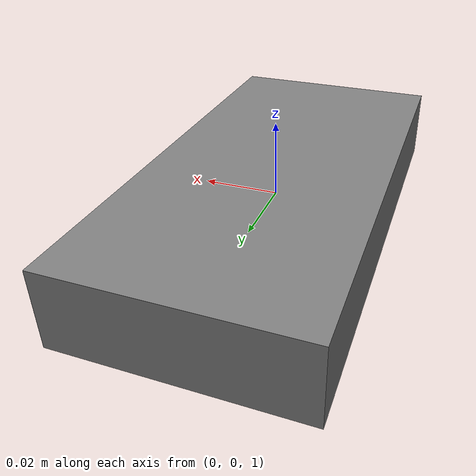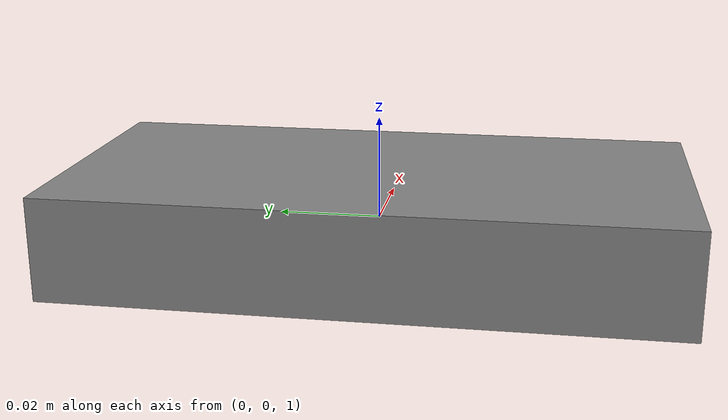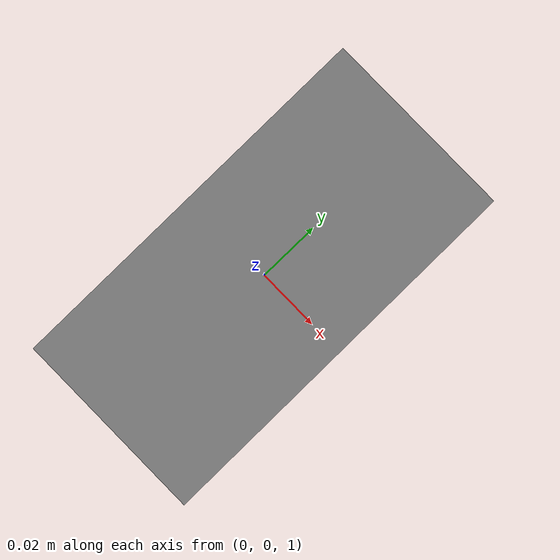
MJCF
<mujoco model="ur5e scene">
<!-- ENGINE SETUP -->
  <compiler angle="radian" meshdir="universal_robots_ur5e/assets" autolimits="true"/>
  <option timestep="0.001" integrator="Euler" >
    <flag multiccd="enable"/>
  </option>
  <statistic center="0.3 0 0.4" extent="3"/>

  <asset>
    <texture type="skybox" builtin="gradient" rgb1="0.3 0.5 0.7" rgb2="0 0 0" width="512" height="3072"/>
    <texture type="2d" name="groundplane" builtin="checker" mark="edge" rgb1="0.2 0.3 0.4" rgb2="0.1 0.2 0.3"
      markrgb="0.8 0.8 0.8" width="300" height="300"/>
    <material name="groundplane" texture="groundplane" texuniform="true" texrepeat="5 5" reflectance="0.2"/>

    <texture type="2d" name="conveyor" builtin="gradient" mark="edge" rgb1="0.5 0.1 0.1" rgb2="0.8 0.1 0.1"
      markrgb="0.8 0.8 0.8" width="300" height="300"/>
    <material name="conveyor" texture="conveyor" texuniform="true" texrepeat="5 5" reflectance="0.2"/>
  </asset>

  <!-- MODEL TREE STARTS HERE -->
  <worldbody>
    <light pos="0 0 1.5" dir="0 0 -1" directional="true"/>
    <geom name="floor" size="0 0 0.05" type="plane" material="groundplane" condim="3"/>

    <!-- Camera model -->
    <body pos="0 0 1" euler="0 0 1.5708">
      <geom size="0.06 0.03 0.01" type="box"/>
      <camera name="rgbcam" mode="fixed" fovy="48.8"/>
    </body>

  </worldbody>

</mujoco>
